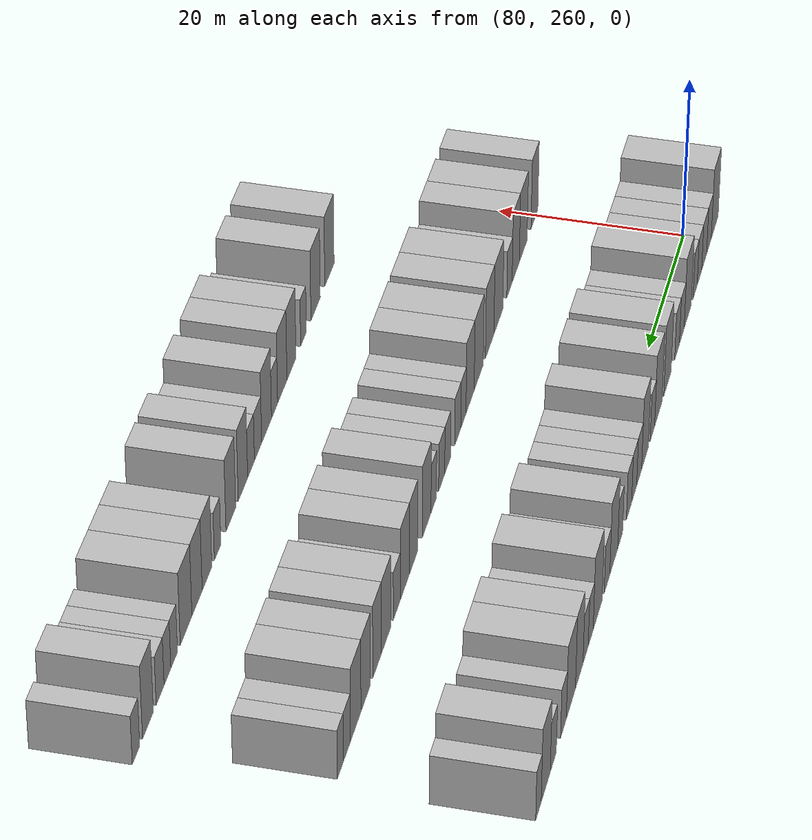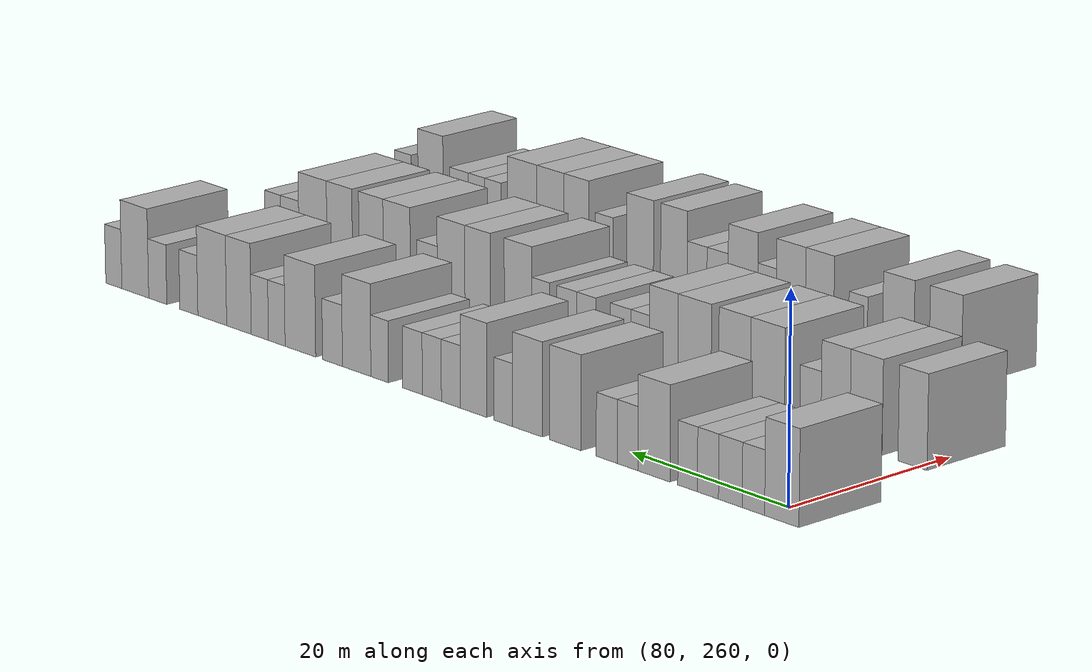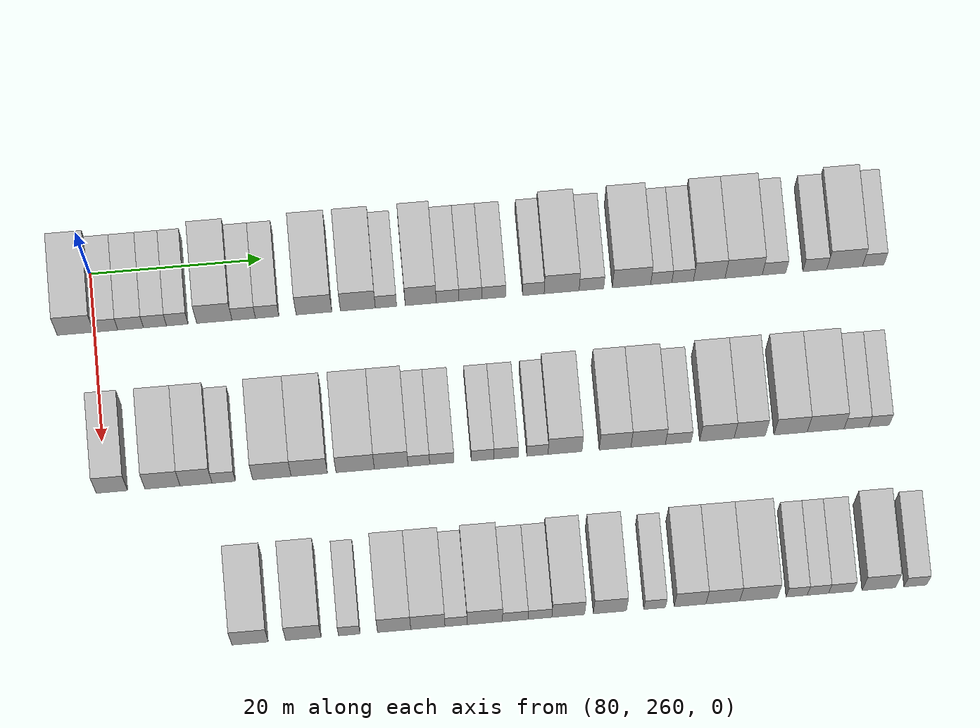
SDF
<sdf version="1.6">
 <world name="default">
  <model name="building_678">
   <static>1</static>
   <pose>82.0000 257.8218 0 0.000000 0.000000 0.000000</pose>
   <link name="link">
    <pose>0 0 4.50 0 0 0</pose>
    <collision name="collision"><geometry><box><size>10.0000 4.2533 9.0000</size></box></geometry></collision>
    <visual name="visual">
     <cast_shadows>0</cast_shadows>
     <geometry><box><size>10.0000 4.2533 9.0000</size></box></geometry>
     <material>
      <script>
       <uri>model://HANNAS_wall/materials/scripts</uri>
       <uri>model://HANNAS_wall/materials/textures</uri>
       <name>vrc/HANNAS_wall</name>
      </script>
     </material>
    </visual>
   </link>
  </model>
  <model name="building_679">
   <static>1</static>
   <pose>82.0000 261.3502 0 0.000000 0.000000 0.000000</pose>
   <link name="link">
    <pose>0 0 3.00 0 0 0</pose>
    <collision name="collision"><geometry><box><size>10.0000 2.8035 6.0000</size></box></geometry></collision>
    <visual name="visual">
     <cast_shadows>0</cast_shadows>
     <geometry><box><size>10.0000 2.8035 6.0000</size></box></geometry>
     <material>
      <script>
       <uri>model://HANNAS_wall/materials/scripts</uri>
       <uri>model://HANNAS_wall/materials/textures</uri>
       <name>vrc/HANNAS_wall</name>
      </script>
     </material>
    </visual>
   </link>
  </model>
  <model name="building_680">
   <static>1</static>
   <pose>82.0000 264.2476 0 0.000000 0.000000 0.000000</pose>
   <link name="link">
    <pose>0 0 3.00 0 0 0</pose>
    <collision name="collision"><geometry><box><size>10.0000 2.9913 6.0000</size></box></geometry></collision>
    <visual name="visual">
     <cast_shadows>0</cast_shadows>
     <geometry><box><size>10.0000 2.9913 6.0000</size></box></geometry>
     <material>
      <script>
       <uri>model://HANNAS_wall/materials/scripts</uri>
       <uri>model://HANNAS_wall/materials/textures</uri>
       <name>vrc/HANNAS_wall</name>
      </script>
     </material>
    </visual>
   </link>
  </model>
  <model name="building_681">
   <static>1</static>
   <pose>82.0000 267.0796 0 0.000000 0.000000 0.000000</pose>
   <link name="link">
    <pose>0 0 3.00 0 0 0</pose>
    <collision name="collision"><geometry><box><size>10.0000 2.6729 6.0000</size></box></geometry></collision>
    <visual name="visual">
     <cast_shadows>0</cast_shadows>
     <geometry><box><size>10.0000 2.6729 6.0000</size></box></geometry>
     <material>
      <script>
       <uri>model://HANNAS_wall/materials/scripts</uri>
       <uri>model://HANNAS_wall/materials/textures</uri>
       <name>vrc/HANNAS_wall</name>
      </script>
     </material>
    </visual>
   </link>
  </model>
  <model name="building_682">
   <static>1</static>
   <pose>82.0000 269.6717 0 0.000000 0.000000 0.000000</pose>
   <link name="link">
    <pose>0 0 3.00 0 0 0</pose>
    <collision name="collision"><geometry><box><size>10.0000 2.5113 6.0000</size></box></geometry></collision>
    <visual name="visual">
     <cast_shadows>0</cast_shadows>
     <geometry><box><size>10.0000 2.5113 6.0000</size></box></geometry>
     <material>
      <script>
       <uri>model://HANNAS_wall/materials/scripts</uri>
       <uri>model://HANNAS_wall/materials/textures</uri>
       <name>vrc/HANNAS_wall</name>
      </script>
     </material>
    </visual>
   </link>
  </model>
  <model name="building_683">
   <static>1</static>
   <pose>82.0000 273.9873 0 0.000000 0.000000 0.000000</pose>
   <link name="link">
    <pose>0 0 4.50 0 0 0</pose>
    <collision name="collision"><geometry><box><size>10.0000 4.1199 9.0000</size></box></geometry></collision>
    <visual name="visual">
     <cast_shadows>0</cast_shadows>
     <geometry><box><size>10.0000 4.1199 9.0000</size></box></geometry>
     <material>
      <script>
       <uri>model://HANNAS_wall/materials/scripts</uri>
       <uri>model://HANNAS_wall/materials/textures</uri>
       <name>vrc/HANNAS_wall</name>
      </script>
     </material>
    </visual>
   </link>
  </model>
  <model name="building_684">
   <static>1</static>
   <pose>82.0000 277.4128 0 0.000000 0.000000 0.000000</pose>
   <link name="link">
    <pose>0 0 3.00 0 0 0</pose>
    <collision name="collision"><geometry><box><size>10.0000 2.7313 6.0000</size></box></geometry></collision>
    <visual name="visual">
     <cast_shadows>0</cast_shadows>
     <geometry><box><size>10.0000 2.7313 6.0000</size></box></geometry>
     <material>
      <script>
       <uri>model://HANNAS_wall/materials/scripts</uri>
       <uri>model://HANNAS_wall/materials/textures</uri>
       <name>vrc/HANNAS_wall</name>
      </script>
     </material>
    </visual>
   </link>
  </model>
  <model name="building_685">
   <static>1</static>
   <pose>82.0000 280.1502 0 0.000000 0.000000 0.000000</pose>
   <link name="link">
    <pose>0 0 3.00 0 0 0</pose>
    <collision name="collision"><geometry><box><size>10.0000 2.7434 6.0000</size></box></geometry></collision>
    <visual name="visual">
     <cast_shadows>0</cast_shadows>
     <geometry><box><size>10.0000 2.7434 6.0000</size></box></geometry>
     <material>
      <script>
       <uri>model://HANNAS_wall/materials/scripts</uri>
       <uri>model://HANNAS_wall/materials/textures</uri>
       <name>vrc/HANNAS_wall</name>
      </script>
     </material>
    </visual>
   </link>
  </model>
  <model name="building_686">
   <static>1</static>
   <pose>82.0000 285.6056 0 0.000000 0.000000 0.000000</pose>
   <link name="link">
    <pose>0 0 4.50 0 0 0</pose>
    <collision name="collision"><geometry><box><size>10.0000 4.1674 9.0000</size></box></geometry></collision>
    <visual name="visual">
     <cast_shadows>0</cast_shadows>
     <geometry><box><size>10.0000 4.1674 9.0000</size></box></geometry>
     <material>
      <script>
       <uri>model://HANNAS_wall/materials/scripts</uri>
       <uri>model://HANNAS_wall/materials/textures</uri>
       <name>vrc/HANNAS_wall</name>
      </script>
     </material>
    </visual>
   </link>
  </model>
  <model name="building_687">
   <static>1</static>
   <pose>82.0000 290.7219 0 0.000000 0.000000 0.000000</pose>
   <link name="link">
    <pose>0 0 4.50 0 0 0</pose>
    <collision name="collision"><geometry><box><size>10.0000 4.0651 9.0000</size></box></geometry></collision>
    <visual name="visual">
     <cast_shadows>0</cast_shadows>
     <geometry><box><size>10.0000 4.0651 9.0000</size></box></geometry>
     <material>
      <script>
       <uri>model://HANNAS_wall/materials/scripts</uri>
       <uri>model://HANNAS_wall/materials/textures</uri>
       <name>vrc/HANNAS_wall</name>
      </script>
     </material>
    </visual>
   </link>
  </model>
  <model name="building_688">
   <static>1</static>
   <pose>82.0000 293.9953 0 0.000000 0.000000 0.000000</pose>
   <link name="link">
    <pose>0 0 3.00 0 0 0</pose>
    <collision name="collision"><geometry><box><size>10.0000 2.4817 6.0000</size></box></geometry></collision>
    <visual name="visual">
     <cast_shadows>0</cast_shadows>
     <geometry><box><size>10.0000 2.4817 6.0000</size></box></geometry>
     <material>
      <script>
       <uri>model://HANNAS_wall/materials/scripts</uri>
       <uri>model://HANNAS_wall/materials/textures</uri>
       <name>vrc/HANNAS_wall</name>
      </script>
     </material>
    </visual>
   </link>
  </model>
  <model name="building_689">
   <static>1</static>
   <pose>82.0000 298.0422 0 0.000000 0.000000 0.000000</pose>
   <link name="link">
    <pose>0 0 4.50 0 0 0</pose>
    <collision name="collision"><geometry><box><size>10.0000 3.6122 9.0000</size></box></geometry></collision>
    <visual name="visual">
     <cast_shadows>0</cast_shadows>
     <geometry><box><size>10.0000 3.6122 9.0000</size></box></geometry>
     <material>
      <script>
       <uri>model://HANNAS_wall/materials/scripts</uri>
       <uri>model://HANNAS_wall/materials/textures</uri>
       <name>vrc/HANNAS_wall</name>
      </script>
     </material>
    </visual>
   </link>
  </model>
  <model name="building_690">
   <static>1</static>
   <pose>82.0000 301.1755 0 0.000000 0.000000 0.000000</pose>
   <link name="link">
    <pose>0 0 3.00 0 0 0</pose>
    <collision name="collision"><geometry><box><size>10.0000 2.6543 6.0000</size></box></geometry></collision>
    <visual name="visual">
     <cast_shadows>0</cast_shadows>
     <geometry><box><size>10.0000 2.6543 6.0000</size></box></geometry>
     <material>
      <script>
       <uri>model://HANNAS_wall/materials/scripts</uri>
       <uri>model://HANNAS_wall/materials/textures</uri>
       <name>vrc/HANNAS_wall</name>
      </script>
     </material>
    </visual>
   </link>
  </model>
  <model name="building_691">
   <static>1</static>
   <pose>82.0000 303.8321 0 0.000000 0.000000 0.000000</pose>
   <link name="link">
    <pose>0 0 3.00 0 0 0</pose>
    <collision name="collision"><geometry><box><size>10.0000 2.6589 6.0000</size></box></geometry></collision>
    <visual name="visual">
     <cast_shadows>0</cast_shadows>
     <geometry><box><size>10.0000 2.6589 6.0000</size></box></geometry>
     <material>
      <script>
       <uri>model://HANNAS_wall/materials/scripts</uri>
       <uri>model://HANNAS_wall/materials/textures</uri>
       <name>vrc/HANNAS_wall</name>
      </script>
     </material>
    </visual>
   </link>
  </model>
  <model name="building_692">
   <static>1</static>
   <pose>82.0000 306.5534 0 0.000000 0.000000 0.000000</pose>
   <link name="link">
    <pose>0 0 3.00 0 0 0</pose>
    <collision name="collision"><geometry><box><size>10.0000 2.7837 6.0000</size></box></geometry></collision>
    <visual name="visual">
     <cast_shadows>0</cast_shadows>
     <geometry><box><size>10.0000 2.7837 6.0000</size></box></geometry>
     <material>
      <script>
       <uri>model://HANNAS_wall/materials/scripts</uri>
       <uri>model://HANNAS_wall/materials/textures</uri>
       <name>vrc/HANNAS_wall</name>
      </script>
     </material>
    </visual>
   </link>
  </model>
  <model name="building_693">
   <static>1</static>
   <pose>82.0000 311.1963 0 0.000000 0.000000 0.000000</pose>
   <link name="link">
    <pose>0 0 3.00 0 0 0</pose>
    <collision name="collision"><geometry><box><size>10.0000 2.5020 6.0000</size></box></geometry></collision>
    <visual name="visual">
     <cast_shadows>0</cast_shadows>
     <geometry><box><size>10.0000 2.5020 6.0000</size></box></geometry>
     <material>
      <script>
       <uri>model://HANNAS_wall/materials/scripts</uri>
       <uri>model://HANNAS_wall/materials/textures</uri>
       <name>vrc/HANNAS_wall</name>
      </script>
     </material>
    </visual>
   </link>
  </model>
  <model name="building_694">
   <static>1</static>
   <pose>82.0000 314.4879 0 0.000000 0.000000 0.000000</pose>
   <link name="link">
    <pose>0 0 4.50 0 0 0</pose>
    <collision name="collision"><geometry><box><size>10.0000 4.0812 9.0000</size></box></geometry></collision>
    <visual name="visual">
     <cast_shadows>0</cast_shadows>
     <geometry><box><size>10.0000 4.0812 9.0000</size></box></geometry>
     <material>
      <script>
       <uri>model://HANNAS_wall/materials/scripts</uri>
       <uri>model://HANNAS_wall/materials/textures</uri>
       <name>vrc/HANNAS_wall</name>
      </script>
     </material>
    </visual>
   </link>
  </model>
  <model name="building_695">
   <static>1</static>
   <pose>82.0000 317.9688 0 0.000000 0.000000 0.000000</pose>
   <link name="link">
    <pose>0 0 3.00 0 0 0</pose>
    <collision name="collision"><geometry><box><size>10.0000 2.8806 6.0000</size></box></geometry></collision>
    <visual name="visual">
     <cast_shadows>0</cast_shadows>
     <geometry><box><size>10.0000 2.8806 6.0000</size></box></geometry>
     <material>
      <script>
       <uri>model://HANNAS_wall/materials/scripts</uri>
       <uri>model://HANNAS_wall/materials/textures</uri>
       <name>vrc/HANNAS_wall</name>
      </script>
     </material>
    </visual>
   </link>
  </model>
  <model name="building_696">
   <static>1</static>
   <pose>82.0000 322.6494 0 0.000000 0.000000 0.000000</pose>
   <link name="link">
    <pose>0 0 4.50 0 0 0</pose>
    <collision name="collision"><geometry><box><size>10.0000 4.4807 9.0000</size></box></geometry></collision>
    <visual name="visual">
     <cast_shadows>0</cast_shadows>
     <geometry><box><size>10.0000 4.4807 9.0000</size></box></geometry>
     <material>
      <script>
       <uri>model://HANNAS_wall/materials/scripts</uri>
       <uri>model://HANNAS_wall/materials/textures</uri>
       <name>vrc/HANNAS_wall</name>
      </script>
     </material>
    </visual>
   </link>
  </model>
  <model name="building_697">
   <static>1</static>
   <pose>82.0000 326.1212 0 0.000000 0.000000 0.000000</pose>
   <link name="link">
    <pose>0 0 3.00 0 0 0</pose>
    <collision name="collision"><geometry><box><size>10.0000 2.4629 6.0000</size></box></geometry></collision>
    <visual name="visual">
     <cast_shadows>0</cast_shadows>
     <geometry><box><size>10.0000 2.4629 6.0000</size></box></geometry>
     <material>
      <script>
       <uri>model://HANNAS_wall/materials/scripts</uri>
       <uri>model://HANNAS_wall/materials/textures</uri>
       <name>vrc/HANNAS_wall</name>
      </script>
     </material>
    </visual>
   </link>
  </model>
  <model name="building_698">
   <static>1</static>
   <pose>82.0000 328.6259 0 0.000000 0.000000 0.000000</pose>
   <link name="link">
    <pose>0 0 3.00 0 0 0</pose>
    <collision name="collision"><geometry><box><size>10.0000 2.5464 6.0000</size></box></geometry></collision>
    <visual name="visual">
     <cast_shadows>0</cast_shadows>
     <geometry><box><size>10.0000 2.5464 6.0000</size></box></geometry>
     <material>
      <script>
       <uri>model://HANNAS_wall/materials/scripts</uri>
       <uri>model://HANNAS_wall/materials/textures</uri>
       <name>vrc/HANNAS_wall</name>
      </script>
     </material>
    </visual>
   </link>
  </model>
  <model name="building_699">
   <static>1</static>
   <pose>82.0000 331.7443 0 0.000000 0.000000 0.000000</pose>
   <link name="link">
    <pose>0 0 4.50 0 0 0</pose>
    <collision name="collision"><geometry><box><size>10.0000 3.6904 9.0000</size></box></geometry></collision>
    <visual name="visual">
     <cast_shadows>0</cast_shadows>
     <geometry><box><size>10.0000 3.6904 9.0000</size></box></geometry>
     <material>
      <script>
       <uri>model://HANNAS_wall/materials/scripts</uri>
       <uri>model://HANNAS_wall/materials/textures</uri>
       <name>vrc/HANNAS_wall</name>
      </script>
     </material>
    </visual>
   </link>
  </model>
  <model name="building_700">
   <static>1</static>
   <pose>82.0000 335.7693 0 0.000000 0.000000 0.000000</pose>
   <link name="link">
    <pose>0 0 4.50 0 0 0</pose>
    <collision name="collision"><geometry><box><size>10.0000 4.3596 9.0000</size></box></geometry></collision>
    <visual name="visual">
     <cast_shadows>0</cast_shadows>
     <geometry><box><size>10.0000 4.3596 9.0000</size></box></geometry>
     <material>
      <script>
       <uri>model://HANNAS_wall/materials/scripts</uri>
       <uri>model://HANNAS_wall/materials/textures</uri>
       <name>vrc/HANNAS_wall</name>
      </script>
     </material>
    </visual>
   </link>
  </model>
  <model name="building_701">
   <static>1</static>
   <pose>82.0000 339.3220 0 0.000000 0.000000 0.000000</pose>
   <link name="link">
    <pose>0 0 3.00 0 0 0</pose>
    <collision name="collision"><geometry><box><size>10.0000 2.7459 6.0000</size></box></geometry></collision>
    <visual name="visual">
     <cast_shadows>0</cast_shadows>
     <geometry><box><size>10.0000 2.7459 6.0000</size></box></geometry>
     <material>
      <script>
       <uri>model://HANNAS_wall/materials/scripts</uri>
       <uri>model://HANNAS_wall/materials/textures</uri>
       <name>vrc/HANNAS_wall</name>
      </script>
     </material>
    </visual>
   </link>
  </model>
  <model name="building_702">
   <static>1</static>
   <pose>82.0000 344.0948 0 0.000000 0.000000 0.000000</pose>
   <link name="link">
    <pose>0 0 3.00 0 0 0</pose>
    <collision name="collision"><geometry><box><size>10.0000 2.7997 6.0000</size></box></geometry></collision>
    <visual name="visual">
     <cast_shadows>0</cast_shadows>
     <geometry><box><size>10.0000 2.7997 6.0000</size></box></geometry>
     <material>
      <script>
       <uri>model://HANNAS_wall/materials/scripts</uri>
       <uri>model://HANNAS_wall/materials/textures</uri>
       <name>vrc/HANNAS_wall</name>
      </script>
     </material>
    </visual>
   </link>
  </model>
  <model name="building_703">
   <static>1</static>
   <pose>82.0000 347.5817 0 0.000000 0.000000 0.000000</pose>
   <link name="link">
    <pose>0 0 4.50 0 0 0</pose>
    <collision name="collision"><geometry><box><size>10.0000 4.1742 9.0000</size></box></geometry></collision>
    <visual name="visual">
     <cast_shadows>0</cast_shadows>
     <geometry><box><size>10.0000 4.1742 9.0000</size></box></geometry>
     <material>
      <script>
       <uri>model://HANNAS_wall/materials/scripts</uri>
       <uri>model://HANNAS_wall/materials/textures</uri>
       <name>vrc/HANNAS_wall</name>
      </script>
     </material>
    </visual>
   </link>
  </model>
  <model name="building_704">
   <static>1</static>
   <pose>82.0000 350.9298 0 0.000000 0.000000 0.000000</pose>
   <link name="link">
    <pose>0 0 3.00 0 0 0</pose>
    <collision name="collision"><geometry><box><size>10.0000 2.5221 6.0000</size></box></geometry></collision>
    <visual name="visual">
     <cast_shadows>0</cast_shadows>
     <geometry><box><size>10.0000 2.5221 6.0000</size></box></geometry>
     <material>
      <script>
       <uri>model://HANNAS_wall/materials/scripts</uri>
       <uri>model://HANNAS_wall/materials/textures</uri>
       <name>vrc/HANNAS_wall</name>
      </script>
     </material>
    </visual>
   </link>
  </model>
  <model name="building_854">
   <static>1</static>
   <pose>101.0000 260.7066 0 0.000000 0.000000 0.000000</pose>
   <link name="link">
    <pose>0 0 4.50 0 0 0</pose>
    <collision name="collision"><geometry><box><size>10.0000 3.6211 9.0000</size></box></geometry></collision>
    <visual name="visual">
     <cast_shadows>0</cast_shadows>
     <geometry><box><size>10.0000 3.6211 9.0000</size></box></geometry>
     <material>
      <script>
       <uri>model://HANNAS_wall/materials/scripts</uri>
       <uri>model://HANNAS_wall/materials/textures</uri>
       <name>vrc/HANNAS_wall</name>
      </script>
     </material>
    </visual>
   </link>
  </model>
  <model name="building_855">
   <static>1</static>
   <pose>101.0000 266.5495 0 0.000000 0.000000 0.000000</pose>
   <link name="link">
    <pose>0 0 4.50 0 0 0</pose>
    <collision name="collision"><geometry><box><size>10.0000 4.0647 9.0000</size></box></geometry></collision>
    <visual name="visual">
     <cast_shadows>0</cast_shadows>
     <geometry><box><size>10.0000 4.0647 9.0000</size></box></geometry>
     <material>
      <script>
       <uri>model://HANNAS_wall/materials/scripts</uri>
       <uri>model://HANNAS_wall/materials/textures</uri>
       <name>vrc/HANNAS_wall</name>
      </script>
     </material>
    </visual>
   </link>
  </model>
  <model name="building_856">
   <static>1</static>
   <pose>101.0000 270.4316 0 0.000000 0.000000 0.000000</pose>
   <link name="link">
    <pose>0 0 4.50 0 0 0</pose>
    <collision name="collision"><geometry><box><size>10.0000 3.6996 9.0000</size></box></geometry></collision>
    <visual name="visual">
     <cast_shadows>0</cast_shadows>
     <geometry><box><size>10.0000 3.6996 9.0000</size></box></geometry>
     <material>
      <script>
       <uri>model://HANNAS_wall/materials/scripts</uri>
       <uri>model://HANNAS_wall/materials/textures</uri>
       <name>vrc/HANNAS_wall</name>
      </script>
     </material>
    </visual>
   </link>
  </model>
  <model name="building_857">
   <static>1</static>
   <pose>101.0000 273.6338 0 0.000000 0.000000 0.000000</pose>
   <link name="link">
    <pose>0 0 3.00 0 0 0</pose>
    <collision name="collision"><geometry><box><size>10.0000 2.7048 6.0000</size></box></geometry></collision>
    <visual name="visual">
     <cast_shadows>0</cast_shadows>
     <geometry><box><size>10.0000 2.7048 6.0000</size></box></geometry>
     <material>
      <script>
       <uri>model://HANNAS_wall/materials/scripts</uri>
       <uri>model://HANNAS_wall/materials/textures</uri>
       <name>vrc/HANNAS_wall</name>
      </script>
     </material>
    </visual>
   </link>
  </model>
  <model name="building_858">
   <static>1</static>
   <pose>101.0000 279.2096 0 0.000000 0.000000 0.000000</pose>
   <link name="link">
    <pose>0 0 4.50 0 0 0</pose>
    <collision name="collision"><geometry><box><size>10.0000 4.4468 9.0000</size></box></geometry></collision>
    <visual name="visual">
     <cast_shadows>0</cast_shadows>
     <geometry><box><size>10.0000 4.4468 9.0000</size></box></geometry>
     <material>
      <script>
       <uri>model://HANNAS_wall/materials/scripts</uri>
       <uri>model://HANNAS_wall/materials/textures</uri>
       <name>vrc/HANNAS_wall</name>
      </script>
     </material>
    </visual>
   </link>
  </model>
  <model name="building_859">
   <static>1</static>
   <pose>101.0000 283.5342 0 0.000000 0.000000 0.000000</pose>
   <link name="link">
    <pose>0 0 4.50 0 0 0</pose>
    <collision name="collision"><geometry><box><size>10.0000 4.2023 9.0000</size></box></geometry></collision>
    <visual name="visual">
     <cast_shadows>0</cast_shadows>
     <geometry><box><size>10.0000 4.2023 9.0000</size></box></geometry>
     <material>
      <script>
       <uri>model://HANNAS_wall/materials/scripts</uri>
       <uri>model://HANNAS_wall/materials/textures</uri>
       <name>vrc/HANNAS_wall</name>
      </script>
     </material>
    </visual>
   </link>
  </model>
  <model name="building_860">
   <static>1</static>
   <pose>101.0000 288.8500 0 0.000000 0.000000 0.000000</pose>
   <link name="link">
    <pose>0 0 4.50 0 0 0</pose>
    <collision name="collision"><geometry><box><size>10.0000 4.4294 9.0000</size></box></geometry></collision>
    <visual name="visual">
     <cast_shadows>0</cast_shadows>
     <geometry><box><size>10.0000 4.4294 9.0000</size></box></geometry>
     <material>
      <script>
       <uri>model://HANNAS_wall/materials/scripts</uri>
       <uri>model://HANNAS_wall/materials/textures</uri>
       <name>vrc/HANNAS_wall</name>
      </script>
     </material>
    </visual>
   </link>
  </model>
  <model name="building_861">
   <static>1</static>
   <pose>101.0000 293.0176 0 0.000000 0.000000 0.000000</pose>
   <link name="link">
    <pose>0 0 4.50 0 0 0</pose>
    <collision name="collision"><geometry><box><size>10.0000 3.9057 9.0000</size></box></geometry></collision>
    <visual name="visual">
     <cast_shadows>0</cast_shadows>
     <geometry><box><size>10.0000 3.9057 9.0000</size></box></geometry>
     <material>
      <script>
       <uri>model://HANNAS_wall/materials/scripts</uri>
       <uri>model://HANNAS_wall/materials/textures</uri>
       <name>vrc/HANNAS_wall</name>
      </script>
     </material>
    </visual>
   </link>
  </model>
  <model name="building_862">
   <static>1</static>
   <pose>101.0000 296.2223 0 0.000000 0.000000 0.000000</pose>
   <link name="link">
    <pose>0 0 3.00 0 0 0</pose>
    <collision name="collision"><geometry><box><size>10.0000 2.5037 6.0000</size></box></geometry></collision>
    <visual name="visual">
     <cast_shadows>0</cast_shadows>
     <geometry><box><size>10.0000 2.5037 6.0000</size></box></geometry>
     <material>
      <script>
       <uri>model://HANNAS_wall/materials/scripts</uri>
       <uri>model://HANNAS_wall/materials/textures</uri>
       <name>vrc/HANNAS_wall</name>
      </script>
     </material>
    </visual>
   </link>
  </model>
  <model name="building_863">
   <static>1</static>
   <pose>101.0000 298.8841 0 0.000000 0.000000 0.000000</pose>
   <link name="link">
    <pose>0 0 3.00 0 0 0</pose>
    <collision name="collision"><geometry><box><size>10.0000 2.8199 6.0000</size></box></geometry></collision>
    <visual name="visual">
     <cast_shadows>0</cast_shadows>
     <geometry><box><size>10.0000 2.8199 6.0000</size></box></geometry>
     <material>
      <script>
       <uri>model://HANNAS_wall/materials/scripts</uri>
       <uri>model://HANNAS_wall/materials/textures</uri>
       <name>vrc/HANNAS_wall</name>
      </script>
     </material>
    </visual>
   </link>
  </model>
  <model name="building_864">
   <static>1</static>
   <pose>101.0000 303.6156 0 0.000000 0.000000 0.000000</pose>
   <link name="link">
    <pose>0 0 3.00 0 0 0</pose>
    <collision name="collision"><geometry><box><size>10.0000 2.6431 6.0000</size></box></geometry></collision>
    <visual name="visual">
     <cast_shadows>0</cast_shadows>
     <geometry><box><size>10.0000 2.6431 6.0000</size></box></geometry>
     <material>
      <script>
       <uri>model://HANNAS_wall/materials/scripts</uri>
       <uri>model://HANNAS_wall/materials/textures</uri>
       <name>vrc/HANNAS_wall</name>
      </script>
     </material>
    </visual>
   </link>
  </model>
  <model name="building_865">
   <static>1</static>
   <pose>101.0000 306.3370 0 0.000000 0.000000 0.000000</pose>
   <link name="link">
    <pose>0 0 3.00 0 0 0</pose>
    <collision name="collision"><geometry><box><size>10.0000 2.7998 6.0000</size></box></geometry></collision>
    <visual name="visual">
     <cast_shadows>0</cast_shadows>
     <geometry><box><size>10.0000 2.7998 6.0000</size></box></geometry>
     <material>
      <script>
       <uri>model://HANNAS_wall/materials/scripts</uri>
       <uri>model://HANNAS_wall/materials/textures</uri>
       <name>vrc/HANNAS_wall</name>
      </script>
     </material>
    </visual>
   </link>
  </model>
  <model name="building_866">
   <static>1</static>
   <pose>101.0000 309.9658 0 0.000000 0.000000 0.000000</pose>
   <link name="link">
    <pose>0 0 3.00 0 0 0</pose>
    <collision name="collision"><geometry><box><size>10.0000 2.4578 6.0000</size></box></geometry></collision>
    <visual name="visual">
     <cast_shadows>0</cast_shadows>
     <geometry><box><size>10.0000 2.4578 6.0000</size></box></geometry>
     <material>
      <script>
       <uri>model://HANNAS_wall/materials/scripts</uri>
       <uri>model://HANNAS_wall/materials/textures</uri>
       <name>vrc/HANNAS_wall</name>
      </script>
     </material>
    </visual>
   </link>
  </model>
  <model name="building_867">
   <static>1</static>
   <pose>101.0000 313.1636 0 0.000000 0.000000 0.000000</pose>
   <link name="link">
    <pose>0 0 4.50 0 0 0</pose>
    <collision name="collision"><geometry><box><size>10.0000 3.9377 9.0000</size></box></geometry></collision>
    <visual name="visual">
     <cast_shadows>0</cast_shadows>
     <geometry><box><size>10.0000 3.9377 9.0000</size></box></geometry>
     <material>
      <script>
       <uri>model://HANNAS_wall/materials/scripts</uri>
       <uri>model://HANNAS_wall/materials/textures</uri>
       <name>vrc/HANNAS_wall</name>
      </script>
     </material>
    </visual>
   </link>
  </model>
  <model name="building_868">
   <static>1</static>
   <pose>101.0000 318.9648 0 0.000000 0.000000 0.000000</pose>
   <link name="link">
    <pose>0 0 4.50 0 0 0</pose>
    <collision name="collision"><geometry><box><size>10.0000 3.6648 9.0000</size></box></geometry></collision>
    <visual name="visual">
     <cast_shadows>0</cast_shadows>
     <geometry><box><size>10.0000 3.6648 9.0000</size></box></geometry>
     <material>
      <script>
       <uri>model://HANNAS_wall/materials/scripts</uri>
       <uri>model://HANNAS_wall/materials/textures</uri>
       <name>vrc/HANNAS_wall</name>
      </script>
     </material>
    </visual>
   </link>
  </model>
  <model name="building_869">
   <static>1</static>
   <pose>101.0000 322.8050 0 0.000000 0.000000 0.000000</pose>
   <link name="link">
    <pose>0 0 4.50 0 0 0</pose>
    <collision name="collision"><geometry><box><size>10.0000 4.0155 9.0000</size></box></geometry></collision>
    <visual name="visual">
     <cast_shadows>0</cast_shadows>
     <geometry><box><size>10.0000 4.0155 9.0000</size></box></geometry>
     <material>
      <script>
       <uri>model://HANNAS_wall/materials/scripts</uri>
       <uri>model://HANNAS_wall/materials/textures</uri>
       <name>vrc/HANNAS_wall</name>
      </script>
     </material>
    </visual>
   </link>
  </model>
  <model name="building_870">
   <static>1</static>
   <pose>101.0000 326.2964 0 0.000000 0.000000 0.000000</pose>
   <link name="link">
    <pose>0 0 3.00 0 0 0</pose>
    <collision name="collision"><geometry><box><size>10.0000 2.9673 6.0000</size></box></geometry></collision>
    <visual name="visual">
     <cast_shadows>0</cast_shadows>
     <geometry><box><size>10.0000 2.9673 6.0000</size></box></geometry>
     <material>
      <script>
       <uri>model://HANNAS_wall/materials/scripts</uri>
       <uri>model://HANNAS_wall/materials/textures</uri>
       <name>vrc/HANNAS_wall</name>
      </script>
     </material>
    </visual>
   </link>
  </model>
  <model name="building_871">
   <static>1</static>
   <pose>101.0000 330.7824 0 0.000000 0.000000 0.000000</pose>
   <link name="link">
    <pose>0 0 4.50 0 0 0</pose>
    <collision name="collision"><geometry><box><size>10.0000 4.0048 9.0000</size></box></geometry></collision>
    <visual name="visual">
     <cast_shadows>0</cast_shadows>
     <geometry><box><size>10.0000 4.0048 9.0000</size></box></geometry>
     <material>
      <script>
       <uri>model://HANNAS_wall/materials/scripts</uri>
       <uri>model://HANNAS_wall/materials/textures</uri>
       <name>vrc/HANNAS_wall</name>
      </script>
     </material>
    </visual>
   </link>
  </model>
  <model name="building_872">
   <static>1</static>
   <pose>101.0000 334.5991 0 0.000000 0.000000 0.000000</pose>
   <link name="link">
    <pose>0 0 4.50 0 0 0</pose>
    <collision name="collision"><geometry><box><size>10.0000 3.6287 9.0000</size></box></geometry></collision>
    <visual name="visual">
     <cast_shadows>0</cast_shadows>
     <geometry><box><size>10.0000 3.6287 9.0000</size></box></geometry>
     <material>
      <script>
       <uri>model://HANNAS_wall/materials/scripts</uri>
       <uri>model://HANNAS_wall/materials/textures</uri>
       <name>vrc/HANNAS_wall</name>
      </script>
     </material>
    </visual>
   </link>
  </model>
  <model name="building_873">
   <static>1</static>
   <pose>101.0000 339.3431 0 0.000000 0.000000 0.000000</pose>
   <link name="link">
    <pose>0 0 4.50 0 0 0</pose>
    <collision name="collision"><geometry><box><size>10.0000 3.8593 9.0000</size></box></geometry></collision>
    <visual name="visual">
     <cast_shadows>0</cast_shadows>
     <geometry><box><size>10.0000 3.8593 9.0000</size></box></geometry>
     <material>
      <script>
       <uri>model://HANNAS_wall/materials/scripts</uri>
       <uri>model://HANNAS_wall/materials/textures</uri>
       <name>vrc/HANNAS_wall</name>
      </script>
     </material>
    </visual>
   </link>
  </model>
  <model name="building_874">
   <static>1</static>
   <pose>101.0000 343.4170 0 0.000000 0.000000 0.000000</pose>
   <link name="link">
    <pose>0 0 4.50 0 0 0</pose>
    <collision name="collision"><geometry><box><size>10.0000 4.2885 9.0000</size></box></geometry></collision>
    <visual name="visual">
     <cast_shadows>0</cast_shadows>
     <geometry><box><size>10.0000 4.2885 9.0000</size></box></geometry>
     <material>
      <script>
       <uri>model://HANNAS_wall/materials/scripts</uri>
       <uri>model://HANNAS_wall/materials/textures</uri>
       <name>vrc/HANNAS_wall</name>
      </script>
     </material>
    </visual>
   </link>
  </model>
  <model name="building_875">
   <static>1</static>
   <pose>101.0000 346.9773 0 0.000000 0.000000 0.000000</pose>
   <link name="link">
    <pose>0 0 3.00 0 0 0</pose>
    <collision name="collision"><geometry><box><size>10.0000 2.8322 6.0000</size></box></geometry></collision>
    <visual name="visual">
     <cast_shadows>0</cast_shadows>
     <geometry><box><size>10.0000 2.8322 6.0000</size></box></geometry>
     <material>
      <script>
       <uri>model://HANNAS_wall/materials/scripts</uri>
       <uri>model://HANNAS_wall/materials/textures</uri>
       <name>vrc/HANNAS_wall</name>
      </script>
     </material>
    </visual>
   </link>
  </model>
  <model name="building_876">
   <static>1</static>
   <pose>101.0000 349.6096 0 0.000000 0.000000 0.000000</pose>
   <link name="link">
    <pose>0 0 3.00 0 0 0</pose>
    <collision name="collision"><geometry><box><size>10.0000 2.4324 6.0000</size></box></geometry></collision>
    <visual name="visual">
     <cast_shadows>0</cast_shadows>
     <geometry><box><size>10.0000 2.4324 6.0000</size></box></geometry>
     <material>
      <script>
       <uri>model://HANNAS_wall/materials/scripts</uri>
       <uri>model://HANNAS_wall/materials/textures</uri>
       <name>vrc/HANNAS_wall</name>
      </script>
     </material>
    </visual>
   </link>
  </model>
  <model name="building_1036">
   <static>1</static>
   <pose>120.0000 275.2035 0 0.000000 0.000000 0.000000</pose>
   <link name="link">
    <pose>0 0 4.50 0 0 0</pose>
    <collision name="collision"><geometry><box><size>10.0000 4.1817 9.0000</size></box></geometry></collision>
    <visual name="visual">
     <cast_shadows>0</cast_shadows>
     <geometry><box><size>10.0000 4.1817 9.0000</size></box></geometry>
     <material>
      <script>
       <uri>model://HANNAS_wall/materials/scripts</uri>
       <uri>model://HANNAS_wall/materials/textures</uri>
       <name>vrc/HANNAS_wall</name>
      </script>
     </material>
    </visual>
   </link>
  </model>
  <model name="building_1037">
   <static>1</static>
   <pose>120.0000 281.3414 0 0.000000 0.000000 0.000000</pose>
   <link name="link">
    <pose>0 0 4.50 0 0 0</pose>
    <collision name="collision"><geometry><box><size>10.0000 4.0941 9.0000</size></box></geometry></collision>
    <visual name="visual">
     <cast_shadows>0</cast_shadows>
     <geometry><box><size>10.0000 4.0941 9.0000</size></box></geometry>
     <material>
      <script>
       <uri>model://HANNAS_wall/materials/scripts</uri>
       <uri>model://HANNAS_wall/materials/textures</uri>
       <name>vrc/HANNAS_wall</name>
      </script>
     </material>
    </visual>
   </link>
  </model>
  <model name="building_1038">
   <static>1</static>
   <pose>120.0000 286.6257 0 0.000000 0.000000 0.000000</pose>
   <link name="link">
    <pose>0 0 3.00 0 0 0</pose>
    <collision name="collision"><geometry><box><size>10.0000 2.4745 6.0000</size></box></geometry></collision>
    <visual name="visual">
     <cast_shadows>0</cast_shadows>
     <geometry><box><size>10.0000 2.4745 6.0000</size></box></geometry>
     <material>
      <script>
       <uri>model://HANNAS_wall/materials/scripts</uri>
       <uri>model://HANNAS_wall/materials/textures</uri>
       <name>vrc/HANNAS_wall</name>
      </script>
     </material>
    </visual>
   </link>
  </model>
  <model name="building_1039">
   <static>1</static>
   <pose>120.0000 291.7740 0 0.000000 0.000000 0.000000</pose>
   <link name="link">
    <pose>0 0 4.50 0 0 0</pose>
    <collision name="collision"><geometry><box><size>10.0000 3.8221 9.0000</size></box></geometry></collision>
    <visual name="visual">
     <cast_shadows>0</cast_shadows>
     <geometry><box><size>10.0000 3.8221 9.0000</size></box></geometry>
     <material>
      <script>
       <uri>model://HANNAS_wall/materials/scripts</uri>
       <uri>model://HANNAS_wall/materials/textures</uri>
       <name>vrc/HANNAS_wall</name>
      </script>
     </material>
    </visual>
   </link>
  </model>
  <model name="building_1040">
   <static>1</static>
   <pose>120.0000 295.6511 0 0.000000 0.000000 0.000000</pose>
   <link name="link">
    <pose>0 0 4.50 0 0 0</pose>
    <collision name="collision"><geometry><box><size>10.0000 3.9321 9.0000</size></box></geometry></collision>
    <visual name="visual">
     <cast_shadows>0</cast_shadows>
     <geometry><box><size>10.0000 3.9321 9.0000</size></box></geometry>
     <material>
      <script>
       <uri>model://HANNAS_wall/materials/scripts</uri>
       <uri>model://HANNAS_wall/materials/textures</uri>
       <name>vrc/HANNAS_wall</name>
      </script>
     </material>
    </visual>
   </link>
  </model>
  <model name="building_1041">
   <static>1</static>
   <pose>120.0000 298.8939 0 0.000000 0.000000 0.000000</pose>
   <link name="link">
    <pose>0 0 3.00 0 0 0</pose>
    <collision name="collision"><geometry><box><size>10.0000 2.5534 6.0000</size></box></geometry></collision>
    <visual name="visual">
     <cast_shadows>0</cast_shadows>
     <geometry><box><size>10.0000 2.5534 6.0000</size></box></geometry>
     <material>
      <script>
       <uri>model://HANNAS_wall/materials/scripts</uri>
       <uri>model://HANNAS_wall/materials/textures</uri>
       <name>vrc/HANNAS_wall</name>
      </script>
     </material>
    </visual>
   </link>
  </model>
  <model name="building_1042">
   <static>1</static>
   <pose>120.0000 302.2029 0 0.000000 0.000000 0.000000</pose>
   <link name="link">
    <pose>0 0 4.50 0 0 0</pose>
    <collision name="collision"><geometry><box><size>10.0000 4.0648 9.0000</size></box></geometry></collision>
    <visual name="visual">
     <cast_shadows>0</cast_shadows>
     <geometry><box><size>10.0000 4.0648 9.0000</size></box></geometry>
     <material>
      <script>
       <uri>model://HANNAS_wall/materials/scripts</uri>
       <uri>model://HANNAS_wall/materials/textures</uri>
       <name>vrc/HANNAS_wall</name>
      </script>
     </material>
    </visual>
   </link>
  </model>
  <model name="building_1043">
   <static>1</static>
   <pose>120.0000 305.7060 0 0.000000 0.000000 0.000000</pose>
   <link name="link">
    <pose>0 0 3.00 0 0 0</pose>
    <collision name="collision"><geometry><box><size>10.0000 2.9413 6.0000</size></box></geometry></collision>
    <visual name="visual">
     <cast_shadows>0</cast_shadows>
     <geometry><box><size>10.0000 2.9413 6.0000</size></box></geometry>
     <material>
      <script>
       <uri>model://HANNAS_wall/materials/scripts</uri>
       <uri>model://HANNAS_wall/materials/textures</uri>
       <name>vrc/HANNAS_wall</name>
      </script>
     </material>
    </visual>
   </link>
  </model>
  <model name="building_1044">
   <static>1</static>
   <pose>120.0000 308.5467 0 0.000000 0.000000 0.000000</pose>
   <link name="link">
    <pose>0 0 3.00 0 0 0</pose>
    <collision name="collision"><geometry><box><size>10.0000 2.7403 6.0000</size></box></geometry></collision>
    <visual name="visual">
     <cast_shadows>0</cast_shadows>
     <geometry><box><size>10.0000 2.7403 6.0000</size></box></geometry>
     <material>
      <script>
       <uri>model://HANNAS_wall/materials/scripts</uri>
       <uri>model://HANNAS_wall/materials/textures</uri>
       <name>vrc/HANNAS_wall</name>
      </script>
     </material>
    </visual>
   </link>
  </model>
  <model name="building_1045">
   <static>1</static>
   <pose>120.0000 311.8045 0 0.000000 0.000000 0.000000</pose>
   <link name="link">
    <pose>0 0 4.50 0 0 0</pose>
    <collision name="collision"><geometry><box><size>10.0000 3.7753 9.0000</size></box></geometry></collision>
    <visual name="visual">
     <cast_shadows>0</cast_shadows>
     <geometry><box><size>10.0000 3.7753 9.0000</size></box></geometry>
     <material>
      <script>
       <uri>model://HANNAS_wall/materials/scripts</uri>
       <uri>model://HANNAS_wall/materials/textures</uri>
       <name>vrc/HANNAS_wall</name>
      </script>
     </material>
    </visual>
   </link>
  </model>
  <model name="building_1046">
   <static>1</static>
   <pose>120.0000 316.5983 0 0.000000 0.000000 0.000000</pose>
   <link name="link">
    <pose>0 0 4.50 0 0 0</pose>
    <collision name="collision"><geometry><box><size>10.0000 3.8124 9.0000</size></box></geometry></collision>
    <visual name="visual">
     <cast_shadows>0</cast_shadows>
     <geometry><box><size>10.0000 3.8124 9.0000</size></box></geometry>
     <material>
      <script>
       <uri>model://HANNAS_wall/materials/scripts</uri>
       <uri>model://HANNAS_wall/materials/textures</uri>
       <name>vrc/HANNAS_wall</name>
      </script>
     </material>
    </visual>
   </link>
  </model>
  <model name="building_1047">
   <static>1</static>
   <pose>120.0000 321.7576 0 0.000000 0.000000 0.000000</pose>
   <link name="link">
    <pose>0 0 3.00 0 0 0</pose>
    <collision name="collision"><geometry><box><size>10.0000 2.5061 6.0000</size></box></geometry></collision>
    <visual name="visual">
     <cast_shadows>0</cast_shadows>
     <geometry><box><size>10.0000 2.5061 6.0000</size></box></geometry>
     <material>
      <script>
       <uri>model://HANNAS_wall/materials/scripts</uri>
       <uri>model://HANNAS_wall/materials/textures</uri>
       <name>vrc/HANNAS_wall</name>
      </script>
     </material>
    </visual>
   </link>
  </model>
  <model name="building_1048">
   <static>1</static>
   <pose>120.0000 325.8411 0 0.000000 0.000000 0.000000</pose>
   <link name="link">
    <pose>0 0 4.50 0 0 0</pose>
    <collision name="collision"><geometry><box><size>10.0000 3.6610 9.0000</size></box></geometry></collision>
    <visual name="visual">
     <cast_shadows>0</cast_shadows>
     <geometry><box><size>10.0000 3.6610 9.0000</size></box></geometry>
     <material>
      <script>
       <uri>model://HANNAS_wall/materials/scripts</uri>
       <uri>model://HANNAS_wall/materials/textures</uri>
       <name>vrc/HANNAS_wall</name>
      </script>
     </material>
    </visual>
   </link>
  </model>
  <model name="building_1049">
   <static>1</static>
   <pose>120.0000 329.6156 0 0.000000 0.000000 0.000000</pose>
   <link name="link">
    <pose>0 0 4.50 0 0 0</pose>
    <collision name="collision"><geometry><box><size>10.0000 3.8879 9.0000</size></box></geometry></collision>
    <visual name="visual">
     <cast_shadows>0</cast_shadows>
     <geometry><box><size>10.0000 3.8879 9.0000</size></box></geometry>
     <material>
      <script>
       <uri>model://HANNAS_wall/materials/scripts</uri>
       <uri>model://HANNAS_wall/materials/textures</uri>
       <name>vrc/HANNAS_wall</name>
      </script>
     </material>
    </visual>
   </link>
  </model>
  <model name="building_1050">
   <static>1</static>
   <pose>120.0000 333.7386 0 0.000000 0.000000 0.000000</pose>
   <link name="link">
    <pose>0 0 4.50 0 0 0</pose>
    <collision name="collision"><geometry><box><size>10.0000 4.3582 9.0000</size></box></geometry></collision>
    <visual name="visual">
     <cast_shadows>0</cast_shadows>
     <geometry><box><size>10.0000 4.3582 9.0000</size></box></geometry>
     <material>
      <script>
       <uri>model://HANNAS_wall/materials/scripts</uri>
       <uri>model://HANNAS_wall/materials/textures</uri>
       <name>vrc/HANNAS_wall</name>
      </script>
     </material>
    </visual>
   </link>
  </model>
  <model name="building_1051">
   <static>1</static>
   <pose>120.0000 338.1374 0 0.000000 0.000000 0.000000</pose>
   <link name="link">
    <pose>0 0 3.00 0 0 0</pose>
    <collision name="collision"><geometry><box><size>10.0000 2.4394 6.0000</size></box></geometry></collision>
    <visual name="visual">
     <cast_shadows>0</cast_shadows>
     <geometry><box><size>10.0000 2.4394 6.0000</size></box></geometry>
     <material>
      <script>
       <uri>model://HANNAS_wall/materials/scripts</uri>
       <uri>model://HANNAS_wall/materials/textures</uri>
       <name>vrc/HANNAS_wall</name>
      </script>
     </material>
    </visual>
   </link>
  </model>
  <model name="building_1052">
   <static>1</static>
   <pose>120.0000 340.5848 0 0.000000 0.000000 0.000000</pose>
   <link name="link">
    <pose>0 0 3.00 0 0 0</pose>
    <collision name="collision"><geometry><box><size>10.0000 2.4554 6.0000</size></box></geometry></collision>
    <visual name="visual">
     <cast_shadows>0</cast_shadows>
     <geometry><box><size>10.0000 2.4554 6.0000</size></box></geometry>
     <material>
      <script>
       <uri>model://HANNAS_wall/materials/scripts</uri>
       <uri>model://HANNAS_wall/materials/textures</uri>
       <name>vrc/HANNAS_wall</name>
      </script>
     </material>
    </visual>
   </link>
  </model>
  <model name="building_1053">
   <static>1</static>
   <pose>120.0000 343.2488 0 0.000000 0.000000 0.000000</pose>
   <link name="link">
    <pose>0 0 3.00 0 0 0</pose>
    <collision name="collision"><geometry><box><size>10.0000 2.8725 6.0000</size></box></geometry></collision>
    <visual name="visual">
     <cast_shadows>0</cast_shadows>
     <geometry><box><size>10.0000 2.8725 6.0000</size></box></geometry>
     <material>
      <script>
       <uri>model://HANNAS_wall/materials/scripts</uri>
       <uri>model://HANNAS_wall/materials/textures</uri>
       <name>vrc/HANNAS_wall</name>
      </script>
     </material>
    </visual>
   </link>
  </model>
  <model name="building_1054">
   <static>1</static>
   <pose>120.0000 347.6095 0 0.000000 0.000000 0.000000</pose>
   <link name="link">
    <pose>0 0 4.50 0 0 0</pose>
    <collision name="collision"><geometry><box><size>10.0000 3.8489 9.0000</size></box></geometry></collision>
    <visual name="visual">
     <cast_shadows>0</cast_shadows>
     <geometry><box><size>10.0000 3.8489 9.0000</size></box></geometry>
     <material>
      <script>
       <uri>model://HANNAS_wall/materials/scripts</uri>
       <uri>model://HANNAS_wall/materials/textures</uri>
       <name>vrc/HANNAS_wall</name>
      </script>
     </material>
    </visual>
   </link>
  </model>
  <model name="building_1055">
   <static>1</static>
   <pose>120.0000 351.8435 0 0.000000 0.000000 0.000000</pose>
   <link name="link">
    <pose>0 0 3.00 0 0 0</pose>
    <collision name="collision"><geometry><box><size>10.0000 2.6191 6.0000</size></box></geometry></collision>
    <visual name="visual">
     <cast_shadows>0</cast_shadows>
     <geometry><box><size>10.0000 2.6191 6.0000</size></box></geometry>
     <material>
      <script>
       <uri>model://HANNAS_wall/materials/scripts</uri>
       <uri>model://HANNAS_wall/materials/textures</uri>
       <name>vrc/HANNAS_wall</name>
      </script>
     </material>
    </visual>
   </link>
  </model>
 </world>
</sdf>
